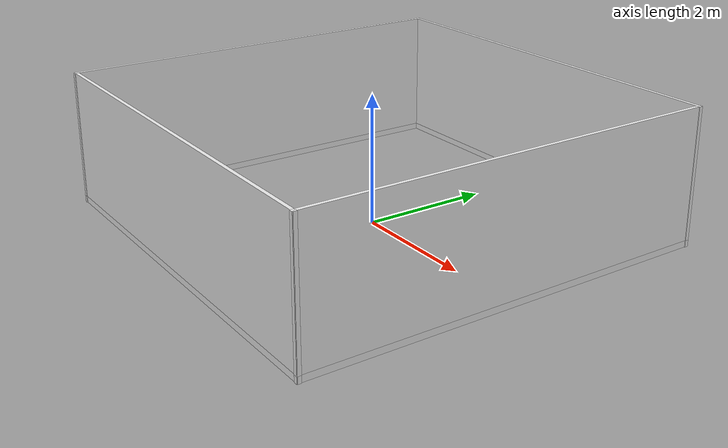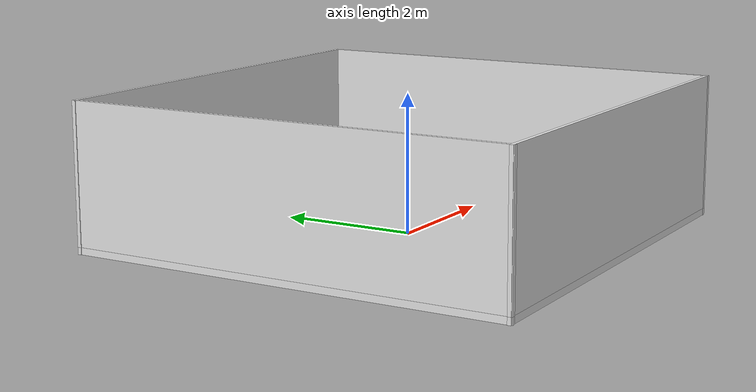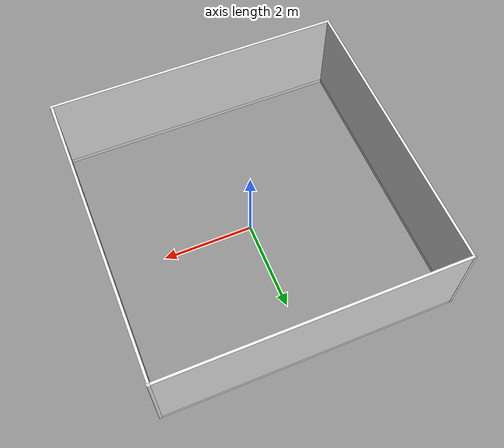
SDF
<?xml version='1.0'?>
<sdf version='1.6'>
  <model name='hsrb_square'>
    <link name='link'>
      <pose frame=''>3.2 0 0 0 -0 0</pose>
      <inertial>
        <mass>50</mass>
        <inertia>
          <ixx>1</ixx>
          <ixy>0</ixy>
          <ixz>0</ixz>
          <iyy>1</iyy>
          <iyz>0</iyz>
          <izz>1</izz>
        </inertia>
        <pose frame=''>0 0 0 0 -0 0</pose>
      </inertial>
      <self_collide>0</self_collide>
      <kinematic>0</kinematic>
      <velocity_decay>
        <linear>0</linear>
        <angular>0</angular>
      </velocity_decay>
      <gravity>1</gravity>
      <visual name='bottom_frame'>
        <pose frame=''>0 0 0.05 0 -0 0</pose>
        <geometry>
          <box>
            <size>0.055 6.475 0.1</size>
          </box>
        </geometry>
        <material>
          <script>
            <uri>model://base_materials/color/scripts</uri>
            <name>hsr_color/white</name>
          </script>
          <shader type='pixel'>
            <normal_map>__default__</normal_map>
          </shader>
          <ambient>1 1 1 1</ambient>
          <diffuse>0.5 0.5 0.5 1</diffuse>
          <specular>0 0 0 1</specular>
          <emissive>0 0 0 1</emissive>
        </material>
        <transparency>0</transparency>
        <cast_shadows>1</cast_shadows>
      </visual>
      <visual name='wall'>
        <pose frame=''>0 0 1.095 0 -0 0</pose>
        <geometry>
          <box>
            <size>0.055 6.475 1.99</size>
          </box>
        </geometry>
        <material>
          <script>
            <uri>model://base_materials/wall/scripts</uri>
            <uri>model://base_materials/wall/textures</uri>
            <name>wall/white_noise</name>
          </script>
          <shader type='pixel'>
            <normal_map>__default__</normal_map>
          </shader>
          <ambient>1 1 1 1</ambient>
          <diffuse>0.5 0.5 0.5 1</diffuse>
          <specular>0 0 0 1</specular>
          <emissive>0 0 0 1</emissive>
        </material>
        <transparency>0</transparency>
        <cast_shadows>1</cast_shadows>
      </visual>
      <collision name='collision_bottom_frame'>
        <laser_retro>0</laser_retro>
        <max_contacts>10</max_contacts>
        <pose frame=''>0 0 0.05 0 -0 0</pose>
        <geometry>
          <box>
            <size>0.055 6.475 0.1</size>
          </box>
        </geometry>
        <surface>
          <friction>
            <ode>
              <mu>1</mu>
              <mu2>1</mu2>
              <fdir1>0 0 0</fdir1>
              <slip1>0</slip1>
              <slip2>0</slip2>
            </ode>
            <torsional>
              <coefficient>1</coefficient>
              <patch_radius>0</patch_radius>
              <surface_radius>0</surface_radius>
              <use_patch_radius>1</use_patch_radius>
              <ode>
                <slip>0</slip>
              </ode>
            </torsional>
          </friction>
          <bounce>
            <restitution_coefficient>0</restitution_coefficient>
            <threshold>1e+06</threshold>
          </bounce>
          <contact>
            <collide_without_contact>0</collide_without_contact>
            <collide_without_contact_bitmask>1</collide_without_contact_bitmask>
            <collide_bitmask>1</collide_bitmask>
            <ode>
              <soft_cfm>0</soft_cfm>
              <soft_erp>0.2</soft_erp>
              <kp>1e+13</kp>
              <kd>1</kd>
              <max_vel>0.01</max_vel>
              <min_depth>0</min_depth>
            </ode>
            <bullet>
              <split_impulse>1</split_impulse>
              <split_impulse_penetration_threshold>-0.01</split_impulse_penetration_threshold>
              <soft_cfm>0</soft_cfm>
              <soft_erp>0.2</soft_erp>
              <kp>1e+13</kp>
              <kd>1</kd>
            </bullet>
          </contact>
        </surface>
      </collision>
      <collision name='collision_wall'>
        <laser_retro>0</laser_retro>
        <max_contacts>10</max_contacts>
        <pose frame=''>0 0 1.095 0 -0 0</pose>
        <geometry>
          <box>
            <size>0.055 6.475 1.99</size>
          </box>
        </geometry>
        <surface>
          <friction>
            <ode>
              <mu>1</mu>
              <mu2>1</mu2>
              <fdir1>0 0 0</fdir1>
              <slip1>0</slip1>
              <slip2>0</slip2>
            </ode>
            <torsional>
              <coefficient>1</coefficient>
              <patch_radius>0</patch_radius>
              <surface_radius>0</surface_radius>
              <use_patch_radius>1</use_patch_radius>
              <ode>
                <slip>0</slip>
              </ode>
            </torsional>
          </friction>
          <bounce>
            <restitution_coefficient>0</restitution_coefficient>
            <threshold>1e+06</threshold>
          </bounce>
          <contact>
            <collide_without_contact>0</collide_without_contact>
            <collide_without_contact_bitmask>1</collide_without_contact_bitmask>
            <collide_bitmask>1</collide_bitmask>
            <ode>
              <soft_cfm>0</soft_cfm>
              <soft_erp>0.2</soft_erp>
              <kp>1e+13</kp>
              <kd>1</kd>
              <max_vel>0.01</max_vel>
              <min_depth>0</min_depth>
            </ode>
            <bullet>
              <split_impulse>1</split_impulse>
              <split_impulse_penetration_threshold>-0.01</split_impulse_penetration_threshold>
              <soft_cfm>0</soft_cfm>
              <soft_erp>0.2</soft_erp>
              <kp>1e+13</kp>
              <kd>1</kd>
            </bullet>
          </contact>
        </surface>
      </collision>
    </link>
    <link name='link_clone'>
      <pose frame=''>-3.2 0 0 0 -0 0</pose>
      <inertial>
        <mass>50</mass>
        <inertia>
          <ixx>1</ixx>
          <ixy>0</ixy>
          <ixz>0</ixz>
          <iyy>1</iyy>
          <iyz>0</iyz>
          <izz>1</izz>
        </inertia>
        <pose frame=''>0 0 0 0 -0 0</pose>
      </inertial>
      <self_collide>0</self_collide>
      <kinematic>0</kinematic>
      <velocity_decay>
        <linear>0</linear>
        <angular>0</angular>
      </velocity_decay>
      <gravity>1</gravity>
      <visual name='wall'>
        <pose frame=''>0 0 1.095 0 -0 0</pose>
        <geometry>
          <box>
            <size>0.055 6.475 1.99</size>
          </box>
        </geometry>
        <material>
          <script>
            <uri>model://base_materials/wall/scripts</uri>
            <uri>model://base_materials/wall/textures</uri>
            <name>wall/white_noise</name>
          </script>
          <shader type='pixel'>
            <normal_map>__default__</normal_map>
          </shader>
          <ambient>1 1 1 1</ambient>
          <diffuse>0.5 0.5 0.5 1</diffuse>
          <specular>0 0 0 1</specular>
          <emissive>0 0 0 1</emissive>
        </material>
        <transparency>0</transparency>
        <cast_shadows>1</cast_shadows>
      </visual>
      <visual name='bottom_frame'>
        <pose frame=''>0 0 0.05 0 -0 0</pose>
        <geometry>
          <box>
            <size>0.055 6.475 0.1</size>
          </box>
        </geometry>
        <material>
          <script>
            <uri>model://base_materials/color/scripts</uri>
            <name>hsr_color/white</name>
          </script>
          <shader type='pixel'>
            <normal_map>__default__</normal_map>
          </shader>
          <ambient>1 1 1 1</ambient>
          <diffuse>0.5 0.5 0.5 1</diffuse>
          <specular>0 0 0 1</specular>
          <emissive>0 0 0 1</emissive>
        </material>
        <transparency>0</transparency>
        <cast_shadows>1</cast_shadows>
      </visual>
      <collision name='collision_bottom_frame'>
        <laser_retro>0</laser_retro>
        <max_contacts>10</max_contacts>
        <pose frame=''>0 0 0.05 0 -0 0</pose>
        <geometry>
          <box>
            <size>0.055 6.475 0.1</size>
          </box>
        </geometry>
        <surface>
          <friction>
            <ode>
              <mu>1</mu>
              <mu2>1</mu2>
              <fdir1>0 0 0</fdir1>
              <slip1>0</slip1>
              <slip2>0</slip2>
            </ode>
            <torsional>
              <coefficient>1</coefficient>
              <patch_radius>0</patch_radius>
              <surface_radius>0</surface_radius>
              <use_patch_radius>1</use_patch_radius>
              <ode>
                <slip>0</slip>
              </ode>
            </torsional>
          </friction>
          <bounce>
            <restitution_coefficient>0</restitution_coefficient>
            <threshold>1e+06</threshold>
          </bounce>
          <contact>
            <collide_without_contact>0</collide_without_contact>
            <collide_without_contact_bitmask>1</collide_without_contact_bitmask>
            <collide_bitmask>1</collide_bitmask>
            <ode>
              <soft_cfm>0</soft_cfm>
              <soft_erp>0.2</soft_erp>
              <kp>1e+13</kp>
              <kd>1</kd>
              <max_vel>0.01</max_vel>
              <min_depth>0</min_depth>
            </ode>
            <bullet>
              <split_impulse>1</split_impulse>
              <split_impulse_penetration_threshold>-0.01</split_impulse_penetration_threshold>
              <soft_cfm>0</soft_cfm>
              <soft_erp>0.2</soft_erp>
              <kp>1e+13</kp>
              <kd>1</kd>
            </bullet>
          </contact>
        </surface>
      </collision>
      <collision name='collision_wall'>
        <laser_retro>0</laser_retro>
        <max_contacts>10</max_contacts>
        <pose frame=''>0 0 1.095 0 -0 0</pose>
        <geometry>
          <box>
            <size>0.055 6.475 1.99</size>
          </box>
        </geometry>
        <surface>
          <friction>
            <ode>
              <mu>1</mu>
              <mu2>1</mu2>
              <fdir1>0 0 0</fdir1>
              <slip1>0</slip1>
              <slip2>0</slip2>
            </ode>
            <torsional>
              <coefficient>1</coefficient>
              <patch_radius>0</patch_radius>
              <surface_radius>0</surface_radius>
              <use_patch_radius>1</use_patch_radius>
              <ode>
                <slip>0</slip>
              </ode>
            </torsional>
          </friction>
          <bounce>
            <restitution_coefficient>0</restitution_coefficient>
            <threshold>1e+06</threshold>
          </bounce>
          <contact>
            <collide_without_contact>0</collide_without_contact>
            <collide_without_contact_bitmask>1</collide_without_contact_bitmask>
            <collide_bitmask>1</collide_bitmask>
            <ode>
              <soft_cfm>0</soft_cfm>
              <soft_erp>0.2</soft_erp>
              <kp>1e+13</kp>
              <kd>1</kd>
              <max_vel>0.01</max_vel>
              <min_depth>0</min_depth>
            </ode>
            <bullet>
              <split_impulse>1</split_impulse>
              <split_impulse_penetration_threshold>-0.01</split_impulse_penetration_threshold>
              <soft_cfm>0</soft_cfm>
              <soft_erp>0.2</soft_erp>
              <kp>1e+13</kp>
              <kd>1</kd>
            </bullet>
          </contact>
        </surface>
      </collision>
    </link>
    <link name='link_clone_clone'>
      <pose frame=''>0 3.2 0 0 -0 1.57</pose>
      <inertial>
        <mass>50</mass>
        <inertia>
          <ixx>1</ixx>
          <ixy>0</ixy>
          <ixz>0</ixz>
          <iyy>1</iyy>
          <iyz>0</iyz>
          <izz>1</izz>
        </inertia>
        <pose frame=''>0 0 0 0 -0 0</pose>
      </inertial>
      <self_collide>0</self_collide>
      <kinematic>0</kinematic>
      <velocity_decay>
        <linear>0</linear>
        <angular>0</angular>
      </velocity_decay>
      <gravity>1</gravity>
      <visual name='wall'>
        <pose frame=''>0 0 1.095 0 -0 0</pose>
        <geometry>
          <box>
            <size>0.055 6.475 1.99</size>
          </box>
        </geometry>
        <material>
          <script>
            <uri>model://base_materials/wall/scripts</uri>
            <uri>model://base_materials/wall/textures</uri>
            <name>wall/white_noise</name>
          </script>
          <shader type='pixel'>
            <normal_map>__default__</normal_map>
          </shader>
          <ambient>1 1 1 1</ambient>
          <diffuse>0.5 0.5 0.5 1</diffuse>
          <specular>0 0 0 1</specular>
          <emissive>0 0 0 1</emissive>
        </material>
        <transparency>0</transparency>
        <cast_shadows>1</cast_shadows>
      </visual>
      <visual name='bottom_frame'>
        <pose frame=''>0 0 0.05 0 -0 0</pose>
        <geometry>
          <box>
            <size>0.055 6.475 0.1</size>
          </box>
        </geometry>
        <material>
          <script>
            <uri>model://base_materials/color/scripts</uri>
            <name>hsr_color/white</name>
          </script>
          <shader type='pixel'>
            <normal_map>__default__</normal_map>
          </shader>
          <ambient>1 1 1 1</ambient>
          <diffuse>0.5 0.5 0.5 1</diffuse>
          <specular>0 0 0 1</specular>
          <emissive>0 0 0 1</emissive>
        </material>
        <transparency>0</transparency>
        <cast_shadows>1</cast_shadows>
      </visual>
      <collision name='collision_wall'>
        <laser_retro>0</laser_retro>
        <max_contacts>10</max_contacts>
        <pose frame=''>0 0 1.095 0 -0 0</pose>
        <geometry>
          <box>
            <size>0.055 6.475 1.99</size>
          </box>
        </geometry>
        <surface>
          <friction>
            <ode>
              <mu>1</mu>
              <mu2>1</mu2>
              <fdir1>0 0 0</fdir1>
              <slip1>0</slip1>
              <slip2>0</slip2>
            </ode>
            <torsional>
              <coefficient>1</coefficient>
              <patch_radius>0</patch_radius>
              <surface_radius>0</surface_radius>
              <use_patch_radius>1</use_patch_radius>
              <ode>
                <slip>0</slip>
              </ode>
            </torsional>
          </friction>
          <bounce>
            <restitution_coefficient>0</restitution_coefficient>
            <threshold>1e+06</threshold>
          </bounce>
          <contact>
            <collide_without_contact>0</collide_without_contact>
            <collide_without_contact_bitmask>1</collide_without_contact_bitmask>
            <collide_bitmask>1</collide_bitmask>
            <ode>
              <soft_cfm>0</soft_cfm>
              <soft_erp>0.2</soft_erp>
              <kp>1e+13</kp>
              <kd>1</kd>
              <max_vel>0.01</max_vel>
              <min_depth>0</min_depth>
            </ode>
            <bullet>
              <split_impulse>1</split_impulse>
              <split_impulse_penetration_threshold>-0.01</split_impulse_penetration_threshold>
              <soft_cfm>0</soft_cfm>
              <soft_erp>0.2</soft_erp>
              <kp>1e+13</kp>
              <kd>1</kd>
            </bullet>
          </contact>
        </surface>
      </collision>
      <collision name='collision_bottom_frame'>
        <laser_retro>0</laser_retro>
        <max_contacts>10</max_contacts>
        <pose frame=''>0 0 0.05 0 -0 0</pose>
        <geometry>
          <box>
            <size>0.055 6.475 0.1</size>
          </box>
        </geometry>
        <surface>
          <friction>
            <ode>
              <mu>1</mu>
              <mu2>1</mu2>
              <fdir1>0 0 0</fdir1>
              <slip1>0</slip1>
              <slip2>0</slip2>
            </ode>
            <torsional>
              <coefficient>1</coefficient>
              <patch_radius>0</patch_radius>
              <surface_radius>0</surface_radius>
              <use_patch_radius>1</use_patch_radius>
              <ode>
                <slip>0</slip>
              </ode>
            </torsional>
          </friction>
          <bounce>
            <restitution_coefficient>0</restitution_coefficient>
            <threshold>1e+06</threshold>
          </bounce>
          <contact>
            <collide_without_contact>0</collide_without_contact>
            <collide_without_contact_bitmask>1</collide_without_contact_bitmask>
            <collide_bitmask>1</collide_bitmask>
            <ode>
              <soft_cfm>0</soft_cfm>
              <soft_erp>0.2</soft_erp>
              <kp>1e+13</kp>
              <kd>1</kd>
              <max_vel>0.01</max_vel>
              <min_depth>0</min_depth>
            </ode>
            <bullet>
              <split_impulse>1</split_impulse>
              <split_impulse_penetration_threshold>-0.01</split_impulse_penetration_threshold>
              <soft_cfm>0</soft_cfm>
              <soft_erp>0.2</soft_erp>
              <kp>1e+13</kp>
              <kd>1</kd>
            </bullet>
          </contact>
        </surface>
      </collision>
    </link>
    <link name='link_clone_clone_clone'>
      <pose frame=''>0 -3.2 0 0 -0 1.57</pose>
      <inertial>
        <mass>50</mass>
        <inertia>
          <ixx>1</ixx>
          <ixy>0</ixy>
          <ixz>0</ixz>
          <iyy>1</iyy>
          <iyz>0</iyz>
          <izz>1</izz>
        </inertia>
        <pose frame=''>0 0 0 0 -0 0</pose>
      </inertial>
      <self_collide>0</self_collide>
      <kinematic>0</kinematic>
      <velocity_decay>
        <linear>0</linear>
        <angular>0</angular>
      </velocity_decay>
      <gravity>1</gravity>
      <visual name='wall'>
        <pose frame=''>0 0 1.095 0 -0 0</pose>
        <geometry>
          <box>
            <size>0.055 6.475 1.99</size>
          </box>
        </geometry>
        <material>
          <script>
            <uri>model://base_materials/wall/scripts</uri>
            <uri>model://base_materials/wall/textures</uri>
            <name>wall/white_noise</name>
          </script>
          <shader type='pixel'>
            <normal_map>__default__</normal_map>
          </shader>
          <ambient>1 1 1 1</ambient>
          <diffuse>0.5 0.5 0.5 1</diffuse>
          <specular>0 0 0 1</specular>
          <emissive>0 0 0 1</emissive>
        </material>
        <transparency>0</transparency>
        <cast_shadows>1</cast_shadows>
      </visual>
      <visual name='bottom_frame'>
        <pose frame=''>0 0 0.05 0 -0 0</pose>
        <geometry>
          <box>
            <size>0.055 6.475 0.1</size>
          </box>
        </geometry>
        <material>
          <script>
            <uri>model://base_materials/color/scripts</uri>
            <name>hsr_color/white</name>
          </script>
          <shader type='pixel'>
            <normal_map>__default__</normal_map>
          </shader>
          <ambient>1 1 1 1</ambient>
          <diffuse>0.5 0.5 0.5 1</diffuse>
          <specular>0 0 0 1</specular>
          <emissive>0 0 0 1</emissive>
        </material>
        <transparency>0</transparency>
        <cast_shadows>1</cast_shadows>
      </visual>
      <collision name='collision_wall'>
        <laser_retro>0</laser_retro>
        <max_contacts>10</max_contacts>
        <pose frame=''>0 0 1.095 0 -0 0</pose>
        <geometry>
          <box>
            <size>0.055 6.475 1.99</size>
          </box>
        </geometry>
        <surface>
          <friction>
            <ode>
              <mu>1</mu>
              <mu2>1</mu2>
              <fdir1>0 0 0</fdir1>
              <slip1>0</slip1>
              <slip2>0</slip2>
            </ode>
            <torsional>
              <coefficient>1</coefficient>
              <patch_radius>0</patch_radius>
              <surface_radius>0</surface_radius>
              <use_patch_radius>1</use_patch_radius>
              <ode>
                <slip>0</slip>
              </ode>
            </torsional>
          </friction>
          <bounce>
            <restitution_coefficient>0</restitution_coefficient>
            <threshold>1e+06</threshold>
          </bounce>
          <contact>
            <collide_without_contact>0</collide_without_contact>
            <collide_without_contact_bitmask>1</collide_without_contact_bitmask>
            <collide_bitmask>1</collide_bitmask>
            <ode>
              <soft_cfm>0</soft_cfm>
              <soft_erp>0.2</soft_erp>
              <kp>1e+13</kp>
              <kd>1</kd>
              <max_vel>0.01</max_vel>
              <min_depth>0</min_depth>
            </ode>
            <bullet>
              <split_impulse>1</split_impulse>
              <split_impulse_penetration_threshold>-0.01</split_impulse_penetration_threshold>
              <soft_cfm>0</soft_cfm>
              <soft_erp>0.2</soft_erp>
              <kp>1e+13</kp>
              <kd>1</kd>
            </bullet>
          </contact>
        </surface>
      </collision>
      <collision name='collision_bottom_frame'>
        <laser_retro>0</laser_retro>
        <max_contacts>10</max_contacts>
        <pose frame=''>0 0 0.05 0 -0 0</pose>
        <geometry>
          <box>
            <size>0.055 6.475 0.1</size>
          </box>
        </geometry>
        <surface>
          <friction>
            <ode>
              <mu>1</mu>
              <mu2>1</mu2>
              <fdir1>0 0 0</fdir1>
              <slip1>0</slip1>
              <slip2>0</slip2>
            </ode>
            <torsional>
              <coefficient>1</coefficient>
              <patch_radius>0</patch_radius>
              <surface_radius>0</surface_radius>
              <use_patch_radius>1</use_patch_radius>
              <ode>
                <slip>0</slip>
              </ode>
            </torsional>
          </friction>
          <bounce>
            <restitution_coefficient>0</restitution_coefficient>
            <threshold>1e+06</threshold>
          </bounce>
          <contact>
            <collide_without_contact>0</collide_without_contact>
            <collide_without_contact_bitmask>1</collide_without_contact_bitmask>
            <collide_bitmask>1</collide_bitmask>
            <ode>
              <soft_cfm>0</soft_cfm>
              <soft_erp>0.2</soft_erp>
              <kp>1e+13</kp>
              <kd>1</kd>
              <max_vel>0.01</max_vel>
              <min_depth>0</min_depth>
            </ode>
            <bullet>
              <split_impulse>1</split_impulse>
              <split_impulse_penetration_threshold>-0.01</split_impulse_penetration_threshold>
              <soft_cfm>0</soft_cfm>
              <soft_erp>0.2</soft_erp>
              <kp>1e+13</kp>
              <kd>1</kd>
            </bullet>
          </contact>
        </surface>
      </collision>
    </link>
    <static>1</static>
    <allow_auto_disable>1</allow_auto_disable>
  </model>
</sdf>
